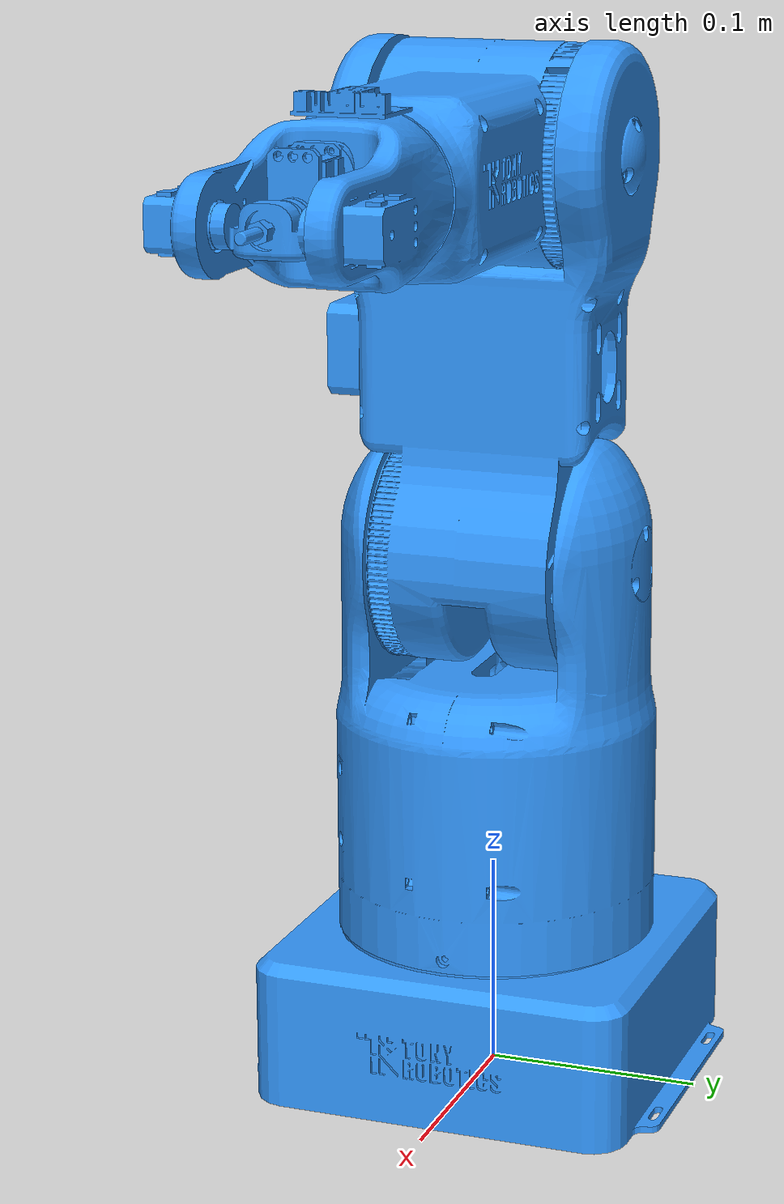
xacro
<?xml version="1.0"?>

<robot xmlns:xacro="http://www.ros.org/wiki/xacro" name="gauss">
    <!-- properties -->
    <xacro:property name="base_joint1_z_distance" value="0.070" />
    <xacro:property name="joint1_joint2_z_distance" value="0.1805" />
    <xacro:property name="joint2_joint3_y_distance" value="0.185" />
    <xacro:property name="joint3_joint4_x_distance" value="0.149" />
    <xacro:property name="joint4_joint5_z_distance" value="0.101" />
    <xacro:property name="joint5_joint6_x_distance" value="0.026" />

    <xacro:property name="PI" value="3.14159265359" />

    <xacro:property name="joint1_lower_limit" value="${-PI/2}" />
    <xacro:property name="joint1_upper_limit" value="${PI/2}" />
    <xacro:property name="joint2_lower_limit" value="${-PI/2}" />
    <xacro:property name="joint2_upper_limit" value="${PI/6}" />
    <!--xacro:property name="joint3_lower_limit" value="-0.26179938" /-->
    <xacro:property name="joint3_lower_limit" value="-0.29670579" />
    <xacro:property name="joint3_upper_limit" value="${PI/2}" />
    <xacro:property name="joint4_lower_limit" value="${-PI*2/3}" />
    <xacro:property name="joint4_upper_limit" value="${PI*2/3}" />
    <xacro:property name="joint5_lower_limit" value="-1.74532922" />
    <xacro:property name="joint5_upper_limit" value="1.74532922" />
    <xacro:property name="joint6_lower_limit" value="-2.53072737" />
    <xacro:property name="joint6_upper_limit" value="2.53072737" />

    <!-- links -->
    <link name="ground_link" />

    <link name="base_link">
        <visual>
            <origin xyz="0 0 0" rpy="0 0 0" />
            <geometry>
                <mesh filename="package://gauss_description/meshes/base_link.stl" />
            </geometry>
            <material name="">
                <color rgba="0.2 0.6 1 1" />
            </material>
        </visual>
        <collision>
            <origin xyz="0 0 0" rpy="0 0 0" />
            <geometry>
                <mesh filename="package://gauss_description/meshes/base_link.stl" />
            </geometry>
        </collision>
    </link>

    <link name="link1">
        <visual>
            <origin xyz="0 0 0" rpy="0 0 0" />
            <geometry>
                <mesh filename="package://gauss_description/meshes/link1.stl" />
            </geometry>
            <material name="">
                <color rgba="0.2 0.6 1 1" />
            </material>
        </visual>
        <collision>
            <origin xyz="0 0 0" rpy="0 0 0" />
            <geometry>
                <mesh filename="package://gauss_description/meshes/link1.stl" />
            </geometry>
        </collision>
    </link>

    <link name="link2">
        <visual>
            <origin xyz="0 0 0" rpy="0 0 0" />
            <geometry>
                <mesh filename="package://gauss_description/meshes/link2.stl" />
            </geometry>
            <material name="">
                <color rgba="0.2 0.6 1 1" />
            </material>
        </visual>
        <collision>
            <origin xyz="0 0 0" rpy="0 0 0" />
            <geometry>
                <mesh filename="package://gauss_description/meshes/link2.stl" />
            </geometry>
        </collision>
    </link>

    <link name="link3">
        <visual>
            <origin xyz="0 0 0" rpy="0 0 0" />
            <geometry>
                <mesh filename="package://gauss_description/meshes/link3.stl" />
            </geometry>
            <material name="">
                <color rgba="0.2 0.6 1 1" />
            </material>
        </visual>
        <collision>
            <origin xyz="0 0 0" rpy="0 0 0" />
            <geometry>
                <mesh filename="package://gauss_description/meshes/link3.stl" />
            </geometry>
        </collision>
    </link>

    <link name="link4">
        <visual>
            <origin xyz="0 0 0" rpy="0 0 0" />
            <geometry>
                <mesh filename="package://gauss_description/meshes/link4.stl" />
            </geometry>
            <material name="">
                <color rgba="0.2 0.6 1 1" />
            </material>
        </visual>
        <collision>
            <origin xyz="0 0 0" rpy="0 0 0" />
            <geometry>
                <mesh filename="package://gauss_description/meshes/link4.stl" />
            </geometry>
        </collision>
    </link>

    <link name="link5">
        <visual>
            <origin xyz="0 0 0" rpy="0 0 0" />
            <geometry>
                <mesh filename="package://gauss_description/meshes/link5.stl" />
            </geometry>
            <material name="">
                <color rgba="0.2 0.6 1 1" />
            </material>
        </visual>
        <collision>
            <origin xyz="0 0 0" rpy="0 0 0" />
            <geometry>
                <mesh filename="package://gauss_description/meshes/link5.stl" />
            </geometry>
        </collision>
    </link>

    <link name="link6">
        <visual>
            <origin xyz="0 0 0" rpy="0 0 0" />
            <geometry>
                <mesh filename="package://gauss_description/meshes/link6.stl" />
            </geometry>
            <material name="">
                <color rgba="0.2 0.6 1 1" />
            </material>
        </visual>
        <collision>
            <origin xyz="0 0 0" rpy="0 0 0" />
            <geometry>
                <mesh filename="package://gauss_description/meshes/link6.stl" />
            </geometry>
        </collision>
    </link>

    <link name="flange">

    </link>

    <link name="tool0">

    </link>

    <!-- joints -->
    <joint name="ground_joint" type="fixed">
        <parent link="ground_link" />
        <child link="base_link" />
        <origin xyz="0 0 0" rpy="0 0 0" />
    </joint>

    <joint name="joint1" type="revolute">
        <parent link="base_link" />
        <child link="link1" />
        <origin xyz="0 0 ${base_joint1_z_distance}" rpy="0 0 0" />
        <axis xyz="0 0 1" />
        <limit effort="1" velocity="1.0" lower="${joint1_lower_limit}" upper="${joint1_upper_limit}" />
    </joint>

    <joint name="joint2" type="revolute">
        <parent link="link1" />
        <child link="link2" />
        <origin xyz="0 0 ${joint1_joint2_z_distance}" rpy="${PI/2} 0 0" />
        <axis xyz="0 0 1" />
        <limit effort="1" velocity="1.0" lower="${joint2_lower_limit}" upper="${joint2_upper_limit}" />
    </joint>

    <joint name="joint3" type="revolute">
        <parent link="link2" />
        <child link="link3" />
        <origin xyz="0 ${joint2_joint3_y_distance} 0" rpy="0 0 0" />
        <axis xyz="0 0 1" />
        <limit effort="1" velocity="1.0" lower="${joint3_lower_limit}" upper="${joint3_upper_limit}" />
    </joint>

    <joint name="joint4" type="revolute">
        <parent link="link3" />
        <child link="link4" />
        <origin xyz="${joint3_joint4_x_distance} 0 0" rpy="0 ${PI/2} 0" />
        <axis xyz="0 0 1" />
        <limit effort="1" velocity="1.0" lower="${joint4_lower_limit}" upper="${joint4_upper_limit}" />
    </joint>

    <joint name="joint5" type="revolute">
        <parent link="link4" />
        <child link="link5" />
        <origin xyz="0 0 ${joint4_joint5_z_distance}" rpy="0 ${-PI/2} 0" />
        <axis xyz="0 0 1" />
        <limit effort="1" velocity="1.0" lower="${joint5_lower_limit}" upper="${joint5_upper_limit}" />
    </joint>

    <joint name="joint6" type="revolute">
        <parent link="link5" />
        <child link="link6" />
        <origin xyz="${joint5_joint6_x_distance} 0 0" rpy="0 ${PI/2} 0" />
        <axis xyz="0 0 1" />
        <limit effort="1" velocity="1.0" lower="${joint6_lower_limit}" upper="${joint6_upper_limit}" />
    </joint>

    <joint name="joint_flange" type="fixed">
        <parent link="link6" />
        <child link="flange" />
        <origin xyz="0 0 0" rpy="0 ${-PI/2} ${-PI/2}" />
    </joint>

    <joint name="joint_tool" type="fixed">
        <parent link="flange" />
        <child link="tool0" />
        <origin xyz="0 0 0" rpy="0 0 0" />
    </joint>
</robot>
